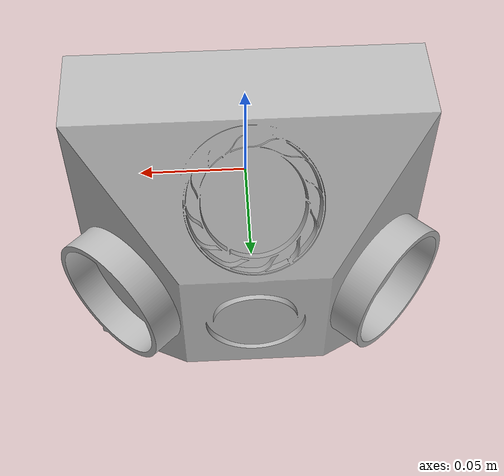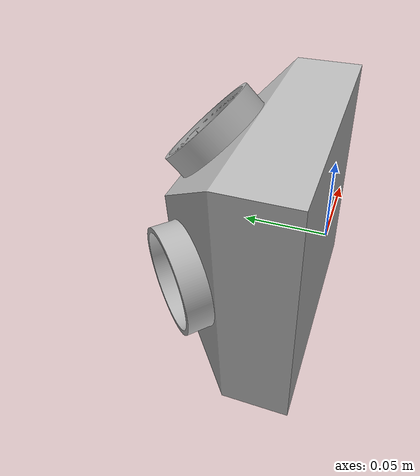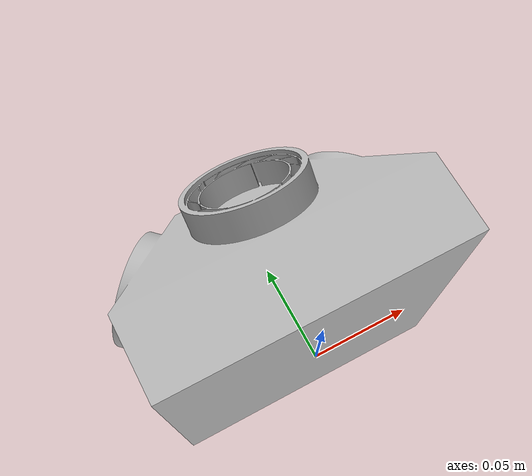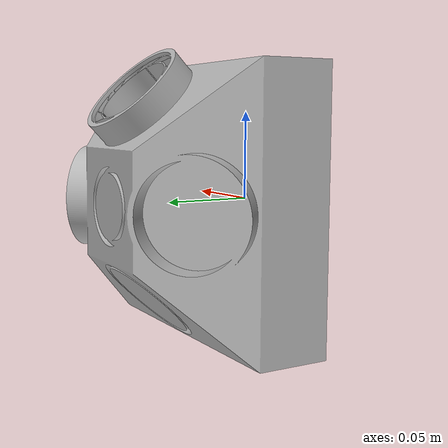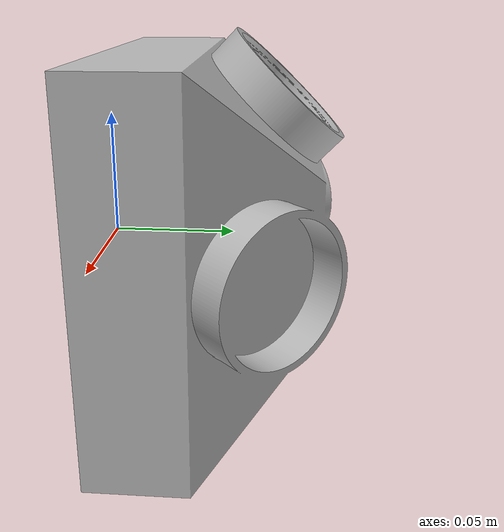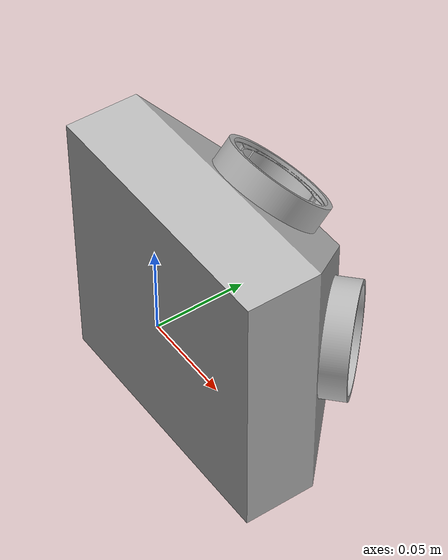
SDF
<?xml version="1.0"?>
<sdf version="1.5">
	<model name="pipestar_without_pipes">
		<static>true</static>
		<link name="Pipestar_base">
			<inertial>
				<pose>0 0 0.027404 0 0 0</pose>
				<mass>3.0</mass>
				<inertia>
					<ixx>0.1</ixx>
					<ixy>0.0</ixy>
					<ixz>0.0</ixz>
					<iyy>0.1</iyy>
					<iyz>0.0</iyz>
					<izz>0.1</izz>
				</inertia>
			</inertial>
			<collision name="Base">
				<pose>0 0 0 0 0 0</pose>
				<geometry>
					<mesh>
						<uri>model://pipestar_without_pipes/meshes/pipestar_without_pipes.dae</uri>
					</mesh>
				</geometry>
			</collision>
			<visual name="visual">
				<pose>0 0 0 0 0 0</pose>
				<geometry>
					<mesh>
						<uri>model://pipestar_without_pipes/meshes/pipestar_without_pipes.dae</uri>
					</mesh>
				</geometry>
			</visual>
		</link>
	</model>
</sdf>
